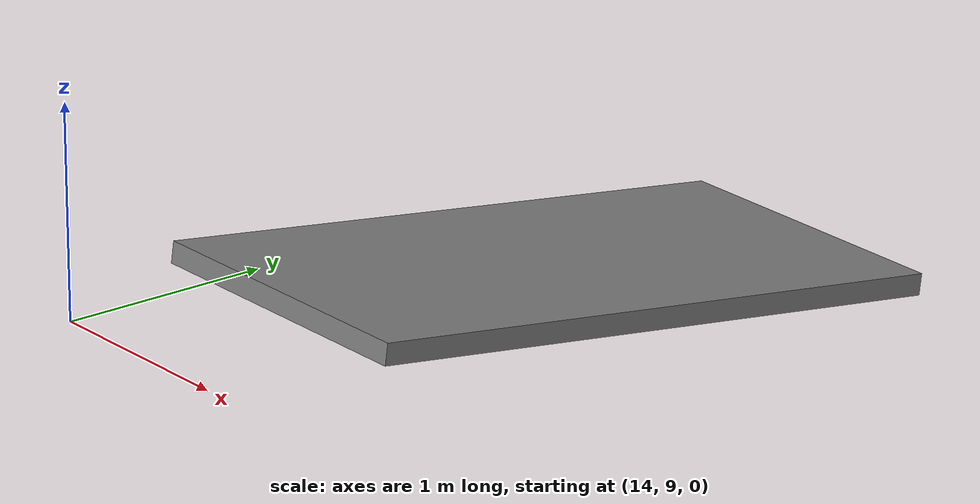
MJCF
<mujoco model="go2 scene">

  <statistic center="0 0 0.1" extent="0.8" />

  <visual>
    <headlight diffuse="0.6 0.6 0.6" ambient="0.3 0.3 0.3" specular="0 0 0" />
    <rgba haze="0.15 0.25 0.35 1" />
    <global azimuth="-130" elevation="-20" />
  </visual>

  <asset>
    <texture type="skybox" builtin="gradient" rgb1="0.3 0.5 0.7" rgb2="0 0 0" width="512" height="3072" />
  </asset>

  <worldbody>
  <geom pos="15 10.85 0.1" type="box" size="1.5 0.75 0.05" quat="0.7053836586502831 -0.049316076218074344 -0.0493158950703442 -0.7053862496738965" /></worldbody>
</mujoco>
